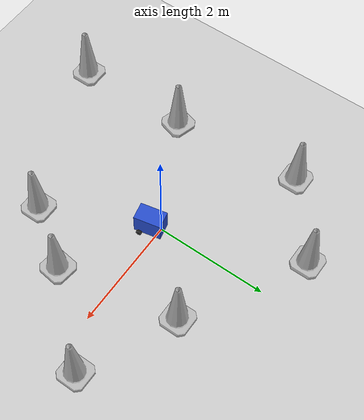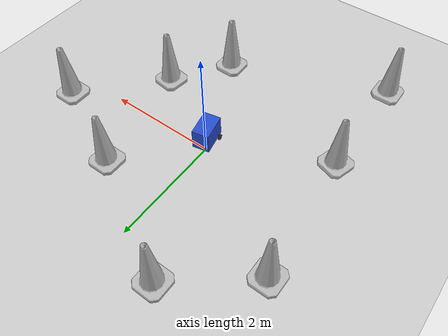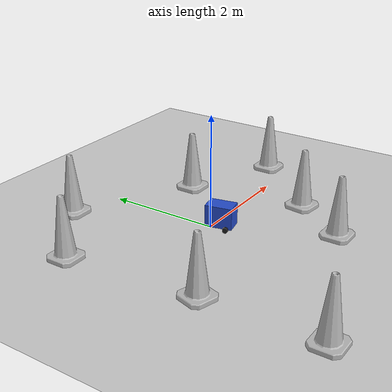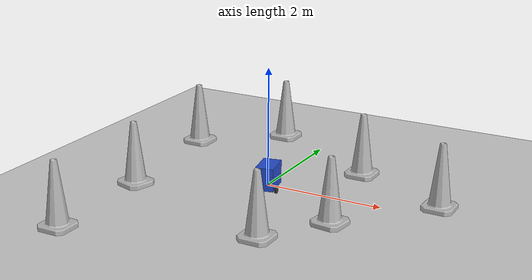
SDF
<sdf version="1.7">
 <world name="default">
  <light name="sun" type="directional">
   <pose>0 0 10 0 -0 0</pose>
   <diffuse>0.8 0.8 0.8 1</diffuse>
   <specular>0.2 0.2 0.2 1</specular>
   <attenuation>
    <range>1000</range>
    <constant>0.9</constant>
    <linear>0.01</linear>
    <quadratic>0.001</quadratic>
   </attenuation>
   <direction>-0.5 0.1 -0.9</direction>
   <spot><inner_angle>0</inner_angle><outer_angle>0</outer_angle><falloff>0</falloff></spot>
  </light>
  <model name="ground_plane">
   <static>1</static>
   <link name="link">
    <collision name="collision">
     <geometry><plane><normal>0 0 1</normal><size>100 100</size></plane></geometry>
     <surface>
      <contact><collide_bitmask>65535</collide_bitmask></contact>
      <friction><ode><mu>100</mu><mu2>50</mu2></ode></friction>
     </surface>
    </collision>
    <visual name="visual">
     <cast_shadows>0</cast_shadows>
     <geometry><plane><normal>0 0 1</normal><size>100 100</size></plane></geometry>
     <material>
      <script><uri>file://media/materials/scripts/gazebo.material</uri><name>Gazebo/Grey</name></script>
     </material>
    </visual>
   </link>
  </model>
  <gravity>0 0 -9.8</gravity>
  <magnetic_field>6e-06 2.3e-05 -4.2e-05</magnetic_field>
  <atmosphere type="adiabatic"/>
  <physics type="ode">
   <max_step_size>0.001</max_step_size>
   <real_time_factor>1</real_time_factor>
   <real_time_update_rate>1000</real_time_update_rate>
  </physics>
  <scene><ambient>0.4 0.4 0.4 1</ambient><background>0.7 0.7 0.7 1</background><shadows>1</shadows></scene>
  <spherical_coordinates>
   <surface_model>EARTH_WGS84</surface_model>
   <latitude_deg>0</latitude_deg>
   <longitude_deg>0</longitude_deg>
   <elevation>0</elevation>
   <heading_deg>0</heading_deg>
  </spherical_coordinates>
  <model name="navbot">
   <link name="base_link">
    <inertial>
     <pose>0.149091 0 0.177273 0 -0 0</pose>
     <mass>5.5</mass>
     <inertia>
      <ixx>0.11992</ixx>
      <ixy>0</ixy>
      <ixz>0.00886364</ixz>
      <iyy>0.181705</iyy>
      <iyz>0</iyz>
      <izz>0.139806</izz>
     </inertia>
    </inertial>
    <collision name="base_link_fixed_joint_lump__chassis_collision">
     <pose>0.14 0 0.195 0 -0 0</pose>
     <geometry><box><size>0.48 0.305 0.39</size></box></geometry>
    </collision>
    <collision name="base_link_fixed_joint_lump__wheel_c_collision_1">
     <pose>0.24 0 0 0 -0 0</pose>
     <geometry><sphere><radius>0.05</radius></sphere></geometry>
     <surface><friction><ode><mu>0.001</mu><mu2>0.001</mu2></ode></friction></surface>
    </collision>
    <visual name="base_link_fixed_joint_lump__chassis_visual">
     <pose>0.14 0 0.195 0 -0 0</pose>
     <geometry><box><size>0.48 0.305 0.39</size></box></geometry>
     <material>
      <script><name>Gazebo/Blue</name><uri>file://media/materials/scripts/gazebo.material</uri></script>
     </material>
    </visual>
    <visual name="base_link_fixed_joint_lump__wheel_c_visual_1">
     <pose>0.24 0 0 0 -0 0</pose>
     <geometry><sphere><radius>0.05</radius></sphere></geometry>
     <material>
      <script><name>Gazebo/Red</name><uri>file://media/materials/scripts/gazebo.material</uri></script>
     </material>
    </visual>
   </link>
   <joint name="wheel_l_joint" type="revolute">
    <pose relative_to="base_link">0 0.175 0 -1.5708 0 0</pose>
    <parent>base_link</parent>
    <child>wheel_l</child>
    <axis>
     <xyz>0 0 1</xyz>
     <limit><lower>-1e+16</lower><upper>1e+16</upper></limit>
     <dynamics><spring_reference>0</spring_reference><spring_stiffness>0</spring_stiffness></dynamics>
    </axis>
   </joint>
   <link name="wheel_l">
    <pose relative_to="wheel_l_joint">0 0 0 0 -0 0</pose>
    <inertial>
     <pose>0 0 0.1 0 -0 0</pose>
     <mass>0.5</mass>
     <inertia>
      <ixx>0.000379167</ixx>
      <ixy>0</ixy>
      <ixz>0</ixz>
      <iyy>0.000379167</iyy>
      <iyz>0</iyz>
      <izz>0.000625</izz>
     </inertia>
    </inertial>
    <collision name="wheel_l_collision">
     <geometry><cylinder><length>0.04</length><radius>0.05</radius></cylinder></geometry>
    </collision>
    <visual name="wheel_l_visual">
     <geometry><cylinder><length>0.04</length><radius>0.05</radius></cylinder></geometry>
     <material>
      <script><name>Gazebo/Black</name><uri>file://media/materials/scripts/gazebo.material</uri></script>
     </material>
    </visual>
   </link>
   <joint name="wheel_r_joint" type="revolute">
    <pose relative_to="base_link">0 -0.175 0 1.5708 -0 0</pose>
    <parent>base_link</parent>
    <child>wheel_r</child>
    <axis>
     <xyz>0 0 -1</xyz>
     <limit><lower>-1e+16</lower><upper>1e+16</upper></limit>
     <dynamics><spring_reference>0</spring_reference><spring_stiffness>0</spring_stiffness></dynamics>
    </axis>
   </joint>
   <link name="wheel_r">
    <pose relative_to="wheel_r_joint">0 0 0 0 -0 0</pose>
    <inertial>
     <pose>0 0 0.1 0 -0 0</pose>
     <mass>0.5</mass>
     <inertia>
      <ixx>0.000379167</ixx>
      <ixy>0</ixy>
      <ixz>0</ixz>
      <iyy>0.000379167</iyy>
      <iyz>0</iyz>
      <izz>0.000625</izz>
     </inertia>
    </inertial>
    <collision name="wheel_r_collision">
     <geometry><cylinder><length>0.04</length><radius>0.05</radius></cylinder></geometry>
    </collision>
    <visual name="wheel_r_visual">
     <geometry><cylinder><length>0.04</length><radius>0.05</radius></cylinder></geometry>
     <material>
      <script><name>Gazebo/Black</name><uri>file://media/materials/scripts/gazebo.material</uri></script>
     </material>
    </visual>
   </link>
   <static>0</static>
   <plugin name="diff_drive" filename="libgazebo_ros_diff_drive.so">
    <left_joint>wheel_l_joint</left_joint>
    <right_joint>wheel_r_joint</right_joint>
    <wheel_separation>0.35</wheel_separation>
    <wheel_diameter>0.1</wheel_diameter>
    <max_wheel_torque>200</max_wheel_torque>
    <max_wheel_acceleration>10.0</max_wheel_acceleration>
    <odometry_fram>odom</odometry_fram>
    <robot_base_frame>base_link</robot_base_frame>
    <publish_odom>1</publish_odom>
    <publish_odom_tf>1</publish_odom_tf>
    <publish_wheel_tf>1</publish_wheel_tf>
   </plugin>
   <pose>0.115595 -0.290532 0.049984 -6e-06 -6.6e-05 1.77677</pose>
  </model>
  <model name="Construction Cone">
   <link name="link">
    <collision name="collision">
     <geometry>
      <mesh><scale>10 10 10</scale><uri>model://construction_cone/meshes/construction_cone.dae</uri></mesh>
     </geometry>
    </collision>
    <visual name="visual">
     <geometry>
      <mesh><scale>10 10 10</scale><uri>model://construction_cone/meshes/construction_cone.dae</uri></mesh>
     </geometry>
    </visual>
    <inertial>
     <inertia><ixx>1</ixx><ixy>0</ixy><ixz>0</ixz><iyy>1</iyy><iyz>0</iyz><izz>1</izz></inertia>
     <mass>1</mass>
    </inertial>
   </link>
   <pose>1.57214 -0.946634 -0 0 0 -0.125646</pose>
  </model>
  <model name="Construction Cone_0">
   <link name="link">
    <collision name="collision">
     <geometry>
      <mesh><scale>10 10 10</scale><uri>model://construction_cone/meshes/construction_cone.dae</uri></mesh>
     </geometry>
    </collision>
    <visual name="visual">
     <geometry>
      <mesh><scale>10 10 10</scale><uri>model://construction_cone/meshes/construction_cone.dae</uri></mesh>
     </geometry>
    </visual>
    <inertial>
     <inertia><ixx>1</ixx><ixy>0</ixy><ixz>0</ixz><iyy>1</iyy><iyz>0</iyz><izz>1</izz></inertia>
     <mass>1</mass>
    </inertial>
   </link>
   <pose>0.872614 -1.94428 -0 0 -1e-06 0</pose>
  </model>
  <model name="Construction Cone_1">
   <link name="link">
    <collision name="collision">
     <geometry>
      <mesh><scale>10 10 10</scale><uri>model://construction_cone/meshes/construction_cone.dae</uri></mesh>
     </geometry>
    </collision>
    <visual name="visual">
     <geometry>
      <mesh><scale>10 10 10</scale><uri>model://construction_cone/meshes/construction_cone.dae</uri></mesh>
     </geometry>
    </visual>
    <inertial>
     <inertia><ixx>1</ixx><ixy>0</ixy><ixz>0</ixz><iyy>1</iyy><iyz>0</iyz><izz>1</izz></inertia>
     <mass>1</mass>
    </inertial>
   </link>
   <pose>1.17306 1.17107 -0 0 -1e-06 0</pose>
  </model>
  <model name="Construction Cone_2">
   <link name="link">
    <collision name="collision">
     <geometry>
      <mesh><scale>10 10 10</scale><uri>model://construction_cone/meshes/construction_cone.dae</uri></mesh>
     </geometry>
    </collision>
    <visual name="visual">
     <geometry>
      <mesh><scale>10 10 10</scale><uri>model://construction_cone/meshes/construction_cone.dae</uri></mesh>
     </geometry>
    </visual>
    <inertial>
     <inertia><ixx>1</ixx><ixy>0</ixy><ixz>0</ixz><iyy>1</iyy><iyz>0</iyz><izz>1</izz></inertia>
     <mass>1</mass>
    </inertial>
   </link>
   <pose>2.81674 0.416435 -0 0 -0 0</pose>
  </model>
  <model name="Construction Cone_3">
   <link name="link">
    <collision name="collision">
     <geometry>
      <mesh><scale>10 10 10</scale><uri>model://construction_cone/meshes/construction_cone.dae</uri></mesh>
     </geometry>
    </collision>
    <visual name="visual">
     <geometry>
      <mesh><scale>10 10 10</scale><uri>model://construction_cone/meshes/construction_cone.dae</uri></mesh>
     </geometry>
    </visual>
    <inertial>
     <inertia><ixx>1</ixx><ixy>0</ixy><ixz>0</ixz><iyy>1</iyy><iyz>0</iyz><izz>1</izz></inertia>
     <mass>1</mass>
    </inertial>
   </link>
   <pose>-1.94129 -1.03077 -0 -0 -1e-06 -0.291067</pose>
  </model>
  <model name="Construction Cone_4">
   <link name="link">
    <collision name="collision">
     <geometry>
      <mesh><scale>10 10 10</scale><uri>model://construction_cone/meshes/construction_cone.dae</uri></mesh>
     </geometry>
    </collision>
    <visual name="visual">
     <geometry>
      <mesh><scale>10 10 10</scale><uri>model://construction_cone/meshes/construction_cone.dae</uri></mesh>
     </geometry>
    </visual>
    <inertial>
     <inertia><ixx>1</ixx><ixy>0</ixy><ixz>0</ixz><iyy>1</iyy><iyz>0</iyz><izz>1</izz></inertia>
     <mass>1</mass>
    </inertial>
   </link>
   <pose>-2.15535 1.31753 -6e-06 -4e-06 0 0</pose>
  </model>
  <model name="Construction Cone_5">
   <link name="link">
    <collision name="collision">
     <geometry>
      <mesh><scale>10 10 10</scale><uri>model://construction_cone/meshes/construction_cone.dae</uri></mesh>
     </geometry>
    </collision>
    <visual name="visual">
     <geometry>
      <mesh><scale>10 10 10</scale><uri>model://construction_cone/meshes/construction_cone.dae</uri></mesh>
     </geometry>
    </visual>
    <inertial>
     <inertia><ixx>1</ixx><ixy>0</ixy><ixz>0</ixz><iyy>1</iyy><iyz>0</iyz><izz>1</izz></inertia>
     <mass>1</mass>
    </inertial>
   </link>
   <pose>-1.91804 -3.05768 -0 0 -0 0</pose>
  </model>
  <model name="Construction Cone_6">
   <link name="link">
    <collision name="collision">
     <geometry>
      <mesh><scale>10 10 10</scale><uri>model://construction_cone/meshes/construction_cone.dae</uri></mesh>
     </geometry>
    </collision>
    <visual name="visual">
     <geometry>
      <mesh><scale>10 10 10</scale><uri>model://construction_cone/meshes/construction_cone.dae</uri></mesh>
     </geometry>
    </visual>
    <inertial>
     <inertia><ixx>1</ixx><ixy>0</ixy><ixz>0</ixz><iyy>1</iyy><iyz>0</iyz><izz>1</izz></inertia>
     <mass>1</mass>
    </inertial>
   </link>
   <pose>-0.883875 2.32722 -0 0 -1e-06 0</pose>
  </model>
 </world>
</sdf>
